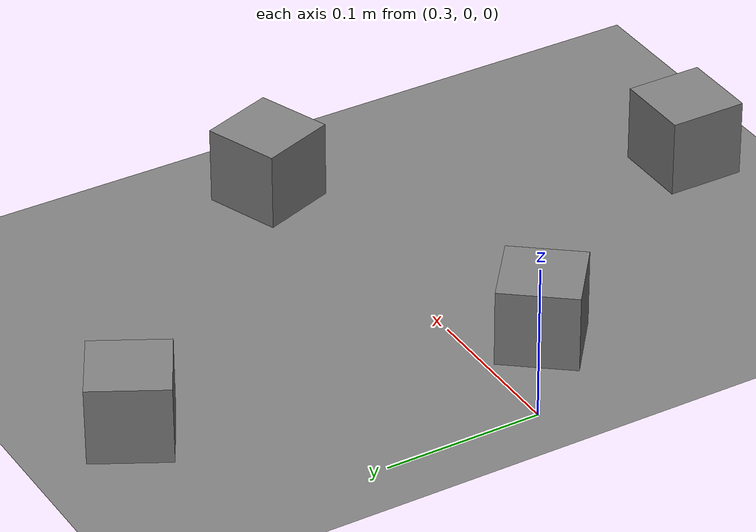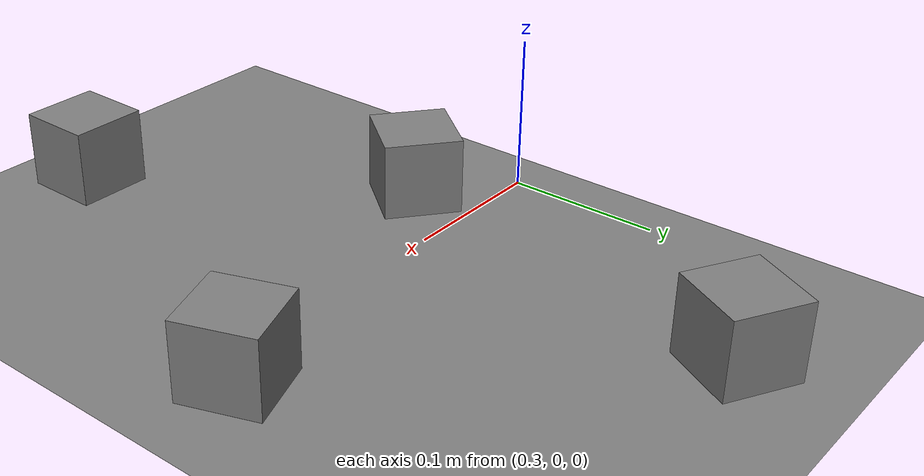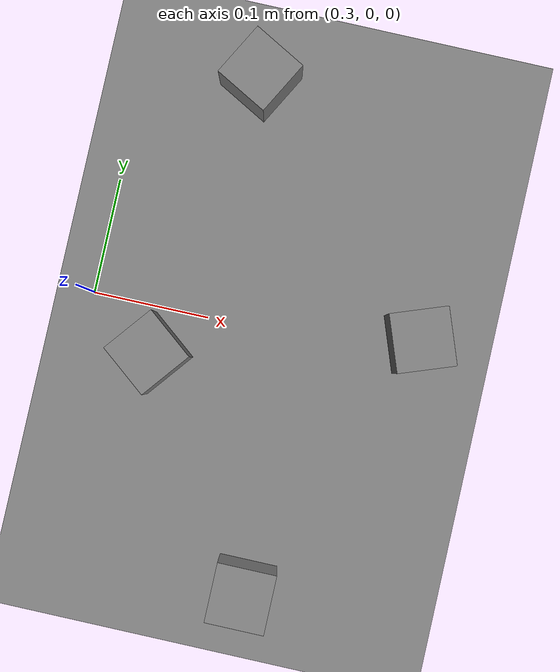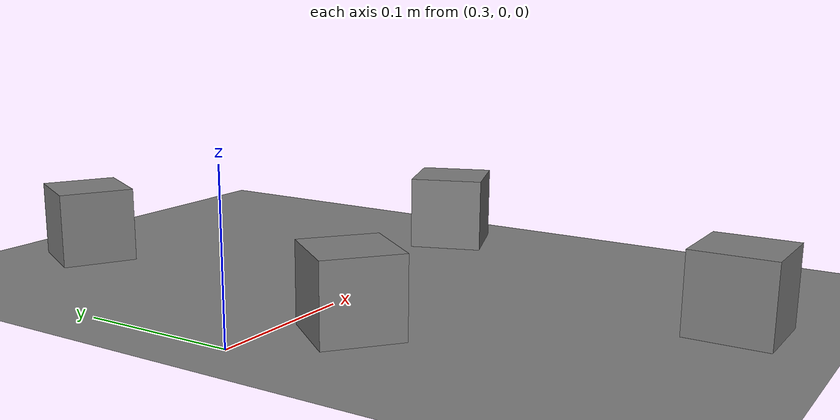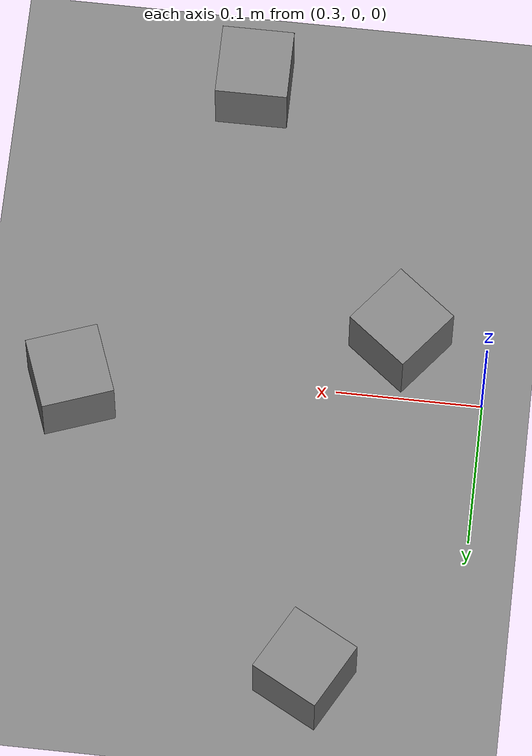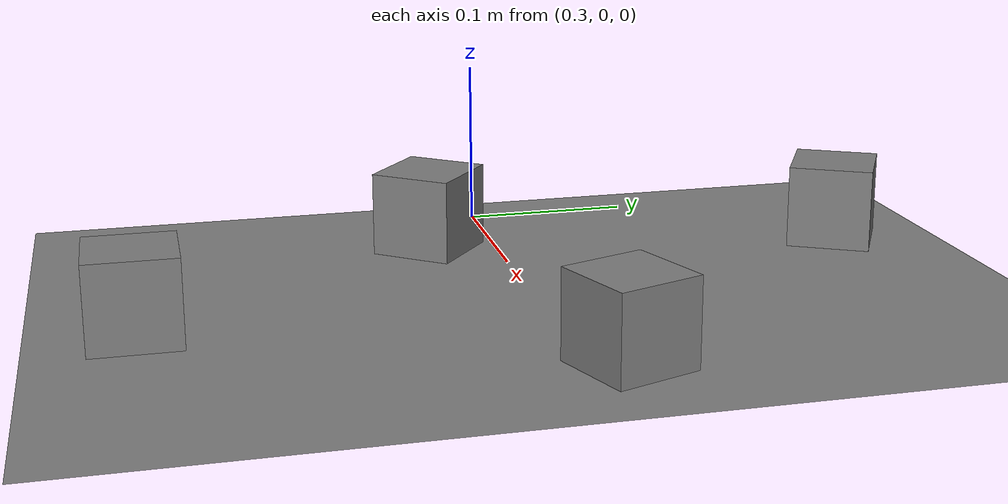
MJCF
<mujoco model="fr3_tabletop">
  <compiler angle="radian" meshdir="meshes" autolimits="true"/>

  <option integrator="implicitfast" timestep="0.002" cone="elliptic" impratio="10"/>

  <default>
    <default class="fr3">
      <!-- Overwritten in joints 5, 6, and 7. -->
      <joint damping="0.21" armature="0.195" frictionloss="1.137"/>
      <position inheritrange="1"/>
      <default class="collision">
        <geom type="mesh" group="3" mass="0" density="0"/>
      </default>
      <site size="0.005" rgba="1 0.35 0.1 1" group="4"/>
    </default>
    <default class="hand">
      <default class="finger">
        <joint axis="0 1 0" type="slide" range="0 0.04" armature="0.1" damping="1"/>
      </default>
      <default class="hand_collision">
        <geom type="mesh" group="3"/>
        <default class="pad_1">
          <geom type="box" size="0.0085 0.004 0.0085" pos="0 0.0055 0.0445"/>
        </default>
        <default class="pad_2">
          <geom type="box" size="0.003 0.002 0.003" pos="0.0055 0.002 0.05"/>
        </default>
        <default class="pad_3">
          <geom type="box" size="0.003 0.002 0.003" pos="-0.0055 0.002 0.05"/>
        </default>
        <default class="pad_4">
          <geom type="box" size="0.003 0.002 0.0035" pos="0.0055 0.002 0.0395"/>
        </default>
        <default class="pad_5">
          <geom type="box" size="0.003 0.002 0.0035" pos="-0.0055 0.002 0.0395"/>
        </default>
      </default>
    </default>
    <default class="block">
      <geom type="box" size="0.025 0.025 0.025" mass="0.08" condim="4" friction="1 0.02 0.001"
        solref="0.004 1" group="1"/>
    </default>
  </default>

  <asset>
    <mesh name="link0_coll" file="link0.stl"/>
    <mesh name="link1_coll" file="link1.stl"/>
    <mesh name="link2_coll" file="link2.stl"/>
    <mesh name="link3_coll" file="link3.stl"/>
    <mesh name="link4_coll" file="link4.stl"/>
    <mesh name="link5_coll" file="link5.stl"/>
    <mesh name="link6_coll" file="link6.stl"/>
    <mesh name="link7_coll" file="link7.stl"/>
    <mesh name="hand_coll" file="hand.stl"/>
    <mesh name="finger_coll" file="finger.stl"/>
  </asset>

  <worldbody>
    <geom name="table" type="plane" size="0 0 0.05" group="1"/>

    <body name="base" childclass="fr3">
      <body name="fr3_link0">
        <geom name="fr3_link0_collision" mesh="link0_coll" class="collision"/>
        <body name="fr3_link1" pos="0 0 0.333" gravcomp="1">
          <inertial pos="4.128e-07 -0.0181251 -0.0386036" quat="0.998098 -0.0605364 0.00380499 0.0110109" mass="2.92747"
            diaginertia="0.0239286 0.0227246 0.00610634"/>
          <joint name="fr3_joint1" axis="0 0 1" range="-2.7437 2.7437" actuatorfrcrange="-87 87"/>
          <geom name="fr3_link1_collision" class="collision" mesh="link1_coll"/>
          <body name="fr3_link2" quat="1 -1 0 0" gravcomp="1">
            <inertial pos="0.00318289 -0.0743222 0.00881461" quat="0.502599 0.584437 -0.465998 0.434366" mass="2.93554"
              diaginertia="0.0629567 0.0411924 0.0246371"/>
            <joint name="fr3_joint2" axis="0 0 1" range="-1.7837 1.7837" actuatorfrcrange="-87 87"/>
            <geom name="fr3_link2_collision" class="collision" mesh="link2_coll"/>
            <body name="fr3_link3" pos="0 -0.316 0" quat="1 1 0 0" gravcomp="1">
              <inertial pos="0.0407016 -0.00482006 -0.0289731" quat="0.921025 -0.244161 0.155272 0.260745" mass="2.2449"
                diaginertia="0.0267409 0.0189869 0.0171587"/>
              <joint name="fr3_joint3" axis="0 0 1" range="-2.9007 2.9007" actuatorfrcrange="-87 87"/>
              <geom name="fr3_link3_collision" class="collision" mesh="link3_coll"/>
              <body name="fr3_link4" pos="0.0825 0 0" quat="1 1 0 0" gravcomp="1">
                <inertial pos="-0.0459101 0.0630493 -0.00851879" quat="0.438018 0.803311 0.00937812 0.403414"
                  mass="2.6156" diaginertia="0.05139 0.0372717 0.0160047"/>
                <joint name="fr3_joint4" axis="0 0 1" range="-3.0421 -0.1518" actuatorfrcrange="-87 87"/>
                <geom name="fr3_link4_collision" class="collision" mesh="link4_coll"/>
                <body name="fr3_link5" pos="-0.0825 0.384 0" quat="1 -1 0 0" gravcomp="1">
                  <inertial pos="-0.00160396 0.0292536 -0.0972966" quat="0.919031 0.125604 0.0751531 -0.366003"
                    mass="2.32712" diaginertia="0.0579335 0.0449144 0.0130634"/>
                  <joint name="fr3_joint5" axis="0 0 1" range="-2.8065 2.8065" actuatorfrcrange="-12 12"
                    armature="0.074" frictionloss="0.763"/>
                  <geom name="fr3_link5_collision" class="collision" mesh="link5_coll"/>
                  <body name="fr3_link6" quat="1 1 0 0" gravcomp="1">
                    <inertial pos="0.0597131 -0.0410295 -0.0101693" quat="0.621301 0.552665 0.510011 0.220081"
                      mass="1.81704" diaginertia="0.0175039 0.0161123 0.00193529"/>
                    <joint name="fr3_joint6" axis="0 0 1" range="0.5445 4.5169" actuatorfrcrange="-12 12"
                      armature="0.074" frictionloss="0.44"/>
                    <geom name="fr3_link6_collision" class="collision" mesh="link6_coll"/>
                    <body name="fr3_link7" pos="0.088 0 0" quat="1 1 0 0" gravcomp="1">
                      <inertial pos="0.00452258 0.00862619 -0.0161633" quat="0.727579 0.0978688 -0.24906 0.63168"
                        mass="0.627143" diaginertia="0.000223836 0.000223642 5.64132e-07"/>
                      <joint name="fr3_joint7" axis="0 0 1" range="-3.0159 3.0159" actuatorfrcrange="-12 12"
                        armature="0.074" frictionloss="0.248"/>
                      <geom name="fr3_link7_collision" class="collision" mesh="link7_coll"/>
                      <site name="attachment_site" pos="0 0 0.107"/>

                      <body name="hand" pos="0 0 0.107" quat="0.9238795 0 0 -0.3826834" childclass="hand" gravcomp="1">
                        <inertial mass="0.73" pos="-0.01 0 0.03" diaginertia="0.001 0.0025 0.0017"/>
                        <geom name="hand_collision" mesh="hand_coll" class="hand_collision"/>
                        <site name="tcp" pos="0 0 0.1034" size="0.005" group="4"/>
                        <body name="left_finger" pos="0 0 0.0584" gravcomp="1">
                          <inertial mass="0.015" pos="0 0 0" diaginertia="2.375e-6 2.375e-6 7.5e-7"/>
                          <joint name="finger_joint1" class="finger"/>
                          <geom mesh="finger_coll" class="hand_collision"/>
                          <geom class="pad_1"/>
                          <geom class="pad_2"/>
                          <geom class="pad_3"/>
                          <geom class="pad_4"/>
                          <geom class="pad_5"/>
                        </body>
                        <body name="right_finger" pos="0 0 0.0584" quat="0 0 0 1" gravcomp="1">
                          <inertial mass="0.015" pos="0 0 0" diaginertia="2.375e-6 2.375e-6 7.5e-7"/>
                          <joint name="finger_joint2" class="finger"/>
                          <geom mesh="finger_coll" class="hand_collision"/>
                          <geom class="pad_1"/>
                          <geom class="pad_2"/>
                          <geom class="pad_3"/>
                          <geom class="pad_4"/>
                          <geom class="pad_5"/>
                        </body>
                      </body>
                    </body>
                  </body>
                </body>
              </body>
            </body>
          </body>
        </body>
      </body>
    </body>

    <body name="block_0" pos="0.48 -0.22 0.025">
      <freejoint/>
      <geom name="block_0" class="block"/>
    </body>
    <body name="block_1" pos="0.58 0.02 0.025" euler="0 0 0.35">
      <freejoint/>
      <geom name="block_1" class="block"/>
    </body>
    <body name="block_2" pos="0.40 0.21 0.025" euler="0 0 -0.5">
      <freejoint/>
      <geom name="block_2" class="block"/>
    </body>
    <body name="block_3" pos="0.36 -0.04 0.025" euler="0 0 0.9">
      <freejoint/>
      <geom name="block_3" class="block"/>
    </body>
  </worldbody>

  <tendon>
    <fixed name="split">
      <joint joint="finger_joint1" coef="0.5"/>
      <joint joint="finger_joint2" coef="0.5"/>
    </fixed>
  </tendon>

  <equality>
    <joint joint1="finger_joint1" joint2="finger_joint2" solimp="0.95 0.99 0.001" solref="0.005 1"/>
  </equality>

  <actuator>
    <position class="fr3" name="fr3_joint1" joint="fr3_joint1" kp="4500" kv="450"/>
    <position class="fr3" name="fr3_joint2" joint="fr3_joint2" kp="4500" kv="450"/>
    <position class="fr3" name="fr3_joint3" joint="fr3_joint3" kp="3500" kv="350"/>
    <position class="fr3" name="fr3_joint4" joint="fr3_joint4" kp="3500" kv="350"/>
    <position class="fr3" name="fr3_joint5" joint="fr3_joint5" kp="2000" kv="200"/>
    <position class="fr3" name="fr3_joint6" joint="fr3_joint6" kp="2000" kv="200"/>
    <position class="fr3" name="fr3_joint7" joint="fr3_joint7" kp="2000" kv="200"/>
    <!-- Franka Hand: ctrl 0 (closed) .. 255 (open), as in the Menagerie Panda. -->
    <general name="gripper" tendon="split" forcerange="-100 100" ctrlrange="0 255"
      dyntype="none" biastype="affine" gainprm="0.01568627451 0 0" biasprm="0 -100 -10"/>
  </actuator>

  <contact>
    <exclude body1="fr3_link0" body2="fr3_link1"/>
  </contact>

  <keyframe>
    <key name="home"
      qpos="0 -0.35 0 -2.3 0 1.95 0.7854 0.04 0.04
            0.48 -0.22 0.025 1 0 0 0
            0.58 0.02 0.025 0.98481 0 0 0.17365
            0.40 0.21 0.025 0.96891 0 0 -0.24740
            0.36 -0.04 0.025 0.90045 0 0 0.43497"
      ctrl="0 -0.35 0 -2.3 0 1.95 0.7854 255"/>
  </keyframe>
</mujoco>
